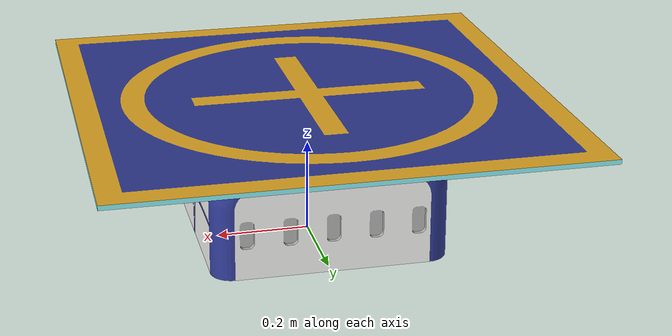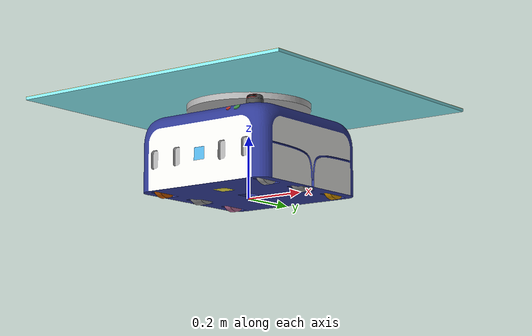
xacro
<?xml version="1.0"?>
<robot name="my_robot" xmlns:xacro="http://www.ros.org/wiki/xacro">

  <!--=========================== PLUGINS ===========================-->

  <xacro:include filename="$(find robot_description)/urdf/robot.gazebo.xacro" />

  <!--=========================== ROBOT PARTS ===========================-->

  <xacro:include filename="$(find robot_description)/urdf/robot_parts/carcaca.xacro" />

  <xacro:include filename="$(find robot_description)/urdf/robot_parts/traction_wheel.xacro" />

  <xacro:include filename="$(find robot_description)/urdf/robot_parts/tray.xacro" />

  <xacro:include filename="$(find robot_description)/urdf/robot_parts/piston.xacro" />

  <xacro:include filename="$(find robot_description)/urdf/robot_parts/omni_wheel.xacro" />

  <!--=========================== SENSORS ===========================-->

  <xacro:arg name="sensor_imu" default="true" />

  <xacro:arg name="sensor_lidar" default="true" />

  <xacro:arg name="sensor_rplidar" default="true" />

  <xacro:arg name="sensor_camera" default="true" />

  <xacro:if value="$(arg sensor_imu)">
    <xacro:include filename="$(find robot_description)/urdf/sensors/imu.xacro" />
  </xacro:if>

  <xacro:if value="$(arg sensor_lidar)">
    <xacro:include filename="$(find robot_description)/urdf/sensors/lidar.xacro" />
  </xacro:if>

  <xacro:if value="$(arg sensor_rplidar)">
    <xacro:include filename="$(find robot_description)/urdf/sensors/rplidar.xacro" />
  </xacro:if>

  <xacro:if value="$(arg sensor_camera)">
    <xacro:include filename="$(find robot_description)/urdf/sensors/camera.xacro" />
  </xacro:if>

</robot>

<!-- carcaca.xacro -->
<robot xmlns:xacro="http://www.ros.org/wiki/xacro">

    <xacro:macro name="base" params="base_link">
        <gazebo reference="${base_link}">
            <selfCollide>true</selfCollide>
            <mu1 value="0.3" />
            <mu2 value="0.3" />
            <kp value="1000000.0" />
            <kd value="100" />
            <fdir1 value="0 0 0" />
        </gazebo>

        <link name="${base_link}">
            <inertial>
                <mass value="2.4" />
                <origin rpy="0  0  3.14" xyz="0  0  0.0118" />
                <inertia ixx="0.019995" ixy="0.0" ixz="0.0"
                iyy="0.019995" iyz="0.0"
                izz="0.03675" />
            </inertial>
            <collision name="${base_link}_collision">
                <origin rpy="0  0  3.14" xyz="0  0  0.0118" />
                <geometry>
                    <mesh filename="package://robot_description/models/laser_robot/meshes/carcaca.dae" scale="1 1 1" />
                </geometry>
            </collision>
            <visual name="${base_link}_visual">
                <origin rpy="0  0  3.14" xyz="0  0  0.0118" />
                <geometry>
                    <mesh filename="package://robot_description/models/laser_robot/meshes/carcaca.dae" scale="1 1 1" />
                </geometry>
            </visual>
        </link>
    </xacro:macro>

    <xacro:base base_link="carcaca" />

</robot>

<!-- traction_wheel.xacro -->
<robot xmlns:xacro="http://www.ros.org/wiki/xacro">

    <xacro:macro name="traction_wheel" params="prefix pos_X pos_Y pos_Z pos_r pos_p pos_y">
        <joint name="joint_${prefix}" type="revolute">
            <parent link="carcaca" />
            <child link="${prefix}" />
            <origin rpy="${pos_r} ${pos_p} ${pos_y}" xyz="${pos_X} ${pos_Y} ${pos_Z}" />
            <axis xyz="0 0 1" />
            <limit effort="-1.0" lower="-1e+16" upper="1e+16" velocity="-1.0" />
        </joint>

        <gazebo reference="${prefix}">
            <selfCollide>false</selfCollide>
            <mu1>1.0</mu1>
            <mu2>1.0</mu2>
            <kp>1000000.0</kp>
            <kd>100.0</kd>
            <minDepth>0.001</minDepth>
            <maxVel>1.0</maxVel>
            <fdir1 value="0 0 0" />
        </gazebo>

        <link name="${prefix}">
            <inertial>
                <mass value="1" />
                <origin rpy="0 0 0" xyz="0 0 0" />
                <inertia ixx="0.001" ixy="0.0" ixz="0.0"
                iyy="0.001" iyz="0.0"
                izz="0.001" />
            </inertial>
            <collision name="${prefix}_collision">
                <origin rpy="0 0 0" xyz="0 0 0" />
                <geometry>
                    <mesh filename="package://robot_description/models/laser_robot/wheel/meshes/roda.obj" scale="1 1 1" />
                </geometry>
            </collision>
            <visual name="${prefix}_visual">
                <origin rpy="0 0 0" xyz="0 0 0" />
                <geometry>
                    <mesh filename="package://robot_description/models/laser_robot/wheel/meshes/roda.obj" scale="1 1 1" />
                </geometry>
            </visual>
        </link>
    </xacro:macro>

    <xacro:traction_wheel prefix="left_wheel" pos_X="-0.214" pos_Y="0" pos_Z="0.0507" pos_r="0" pos_p="1.57" pos_y="0" />
    <xacro:traction_wheel prefix="right_wheel" pos_X="0.193" pos_Y="0" pos_Z="0.0507" pos_r="0" pos_p="1.57" pos_y="0" />
</robot>

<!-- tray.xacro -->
<robot xmlns:xacro="http://www.ros.org/wiki/xacro">

    <xacro:macro name="tray" params="prefix">
        <joint name="joint_${prefix}" type="continuous">
            <parent link="piston" />
            <child link="${prefix}" />
            <origin rpy="0 0 0" xyz="0 0 0" />
            <axis xyz="0 0 1" />
        </joint>

        <gazebo reference="${prefix}">
            <selfCollide>true</selfCollide>
            <mu1 value="0.1" />
            <mu2 value="0.1" />
            <kp value="10000000.0" />
            <kd value="10000" />
            <fdir1 value="0 0 0" />
        </gazebo>

        <link name="${prefix}">
            <inertial>
                <mass value="0.5" />
                <origin rpy="0 0 0" xyz="0 0 0" />
                <inertia ixx="0" ixy="0.0" ixz="0.0" iyy="0" iyz="0.0" izz="0" />
            </inertial>
            <collision name="${prefix}_collision">
                <origin rpy="0 0 0" xyz="0 0 0" />
                <geometry>
                    <mesh filename="package://robot_description/models/laser_robot/meshes/tray.dae" scale="1 1 1" />
                </geometry>
            </collision>
            <visual name="${prefix}_visual">
                <origin rpy="0 0 0" xyz="0 0 0" />
                <geometry>
                    <mesh filename="package://robot_description/models/laser_robot/meshes/tray.dae" scale="1 1 1" />
                </geometry>
            </visual>
        </link>
    </xacro:macro>

    <xacro:tray prefix="tray" />

</robot>

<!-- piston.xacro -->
<robot xmlns:xacro="http://www.ros.org/wiki/xacro">

    <xacro:macro name="piston" params="prefix">
        <joint name="joint_${prefix}" type="prismatic">
            <parent link="carcaca" />
            <child link="${prefix}" />
            <origin rpy="0 0 0" xyz="0 0 0.1318" />
            <axis xyz="0 0 1" />
            <limit effort="0" lower="0" upper="0.04" velocity="0" />
        </joint>

        <gazebo reference="${prefix}">
            <selfCollide>true</selfCollide>
            <mu1 value="0.1" />
            <mu2 value="0.1" />
            <kp value="10000000.0" />
            <kd value="10000" />
            <fdir1 value="0 0 0" />
        </gazebo>

        <link name="${prefix}">
            <inertial>
                <mass value="0.3" />
                <origin rpy="0  0  0" xyz="0 0 0" />
                <inertia ixx="0" ixy="0" ixz="0" iyy="0" iyz="0" izz="0" />
            </inertial>
            <collision name="${prefix}_collision">
                <origin rpy="0  0  0" xyz="0 0 0" />
                <geometry>
                    <mesh filename="package://robot_description/models/laser_robot/meshes/piston.dae" scale="1 1 1" />
                </geometry>
            </collision>
            <visual name="${prefix}_visual">
                <origin rpy="0  0  0" xyz="0 0 0" />
                <geometry>
                    <mesh filename="package://robot_description/models/laser_robot/meshes/piston.dae" scale="1 1 1" />
                </geometry>
            </visual>
        </link>
    </xacro:macro>

    <xacro:piston prefix="piston" />

</robot>

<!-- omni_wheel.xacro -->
<robot xmlns:xacro="http://www.ros.org/wiki/xacro">

    <xacro:macro name="omni_wheel" params="prefix pos_X pos_Y pos_Z pos_r pos_p pos_y">
        <joint name="joint_${prefix}_wheel" type="fixed">
            <parent link="carcaca" />
            <child link="${prefix}_wheel" />
            <origin rpy="${pos_r} ${pos_p} ${pos_y}" xyz="${pos_X} ${pos_Y} ${pos_Z}" />
        </joint>

        <gazebo reference="${prefix}_wheel">
            <selfCollide>true</selfCollide>
            <mu1 value="0.09" />
            <mu2 value="0.09" />
            <kp value="10000000.0" />
            <kd value="10000" />
            <fdir1 value="0 0 0" />
        </gazebo>

        <link name="${prefix}_wheel">
            <inertial>
                <mass value="0.01" />
                <origin rpy="0 0 0" xyz="0 0 0" />
                <inertia ixx="1" ixy="0.0" ixz="0.0" iyy="1" iyz="0.0" izz="1" />
            </inertial>
            <collision name="${prefix}_wheel_collision">
                <origin rpy="0 0 0" xyz="0 0 0" />
                <geometry>
                    <mesh filename="package://robot_description/models/laser_robot/omni_wheel/meshes/roda_omni.obj" scale="1 1 1" />
                </geometry>
            </collision>
            <visual name="${prefix}_wheel_visual">
                <origin rpy="0 0 0" xyz="0 0 0" />
                <geometry>
                    <mesh filename="package://robot_description/models/laser_robot/omni_wheel/meshes/roda_omni.obj" scale="1 1 1" />
                </geometry>
            </visual>
        </link>
    </xacro:macro>

    <xacro:omni_wheel prefix="left_front" pos_X="-0.214" pos_Y="-0.176" pos_Z="0.0508" pos_r="0" pos_p="1.57" pos_y="0" />
    <xacro:omni_wheel prefix="left_rear" pos_X="-0.214" pos_Y="0.176" pos_Z="0.0508" pos_r="0" pos_p="1.57" pos_y="0" />
    <xacro:omni_wheel prefix="right_front" pos_X="0.193" pos_Y="-0.176" pos_Z="0.0508" pos_r="0" pos_p="1.57" pos_y="0" />
    <xacro:omni_wheel prefix="right_rear" pos_X="0.193" pos_Y="0.176" pos_Z="0.0508" pos_r="0" pos_p="1.57" pos_y="0" />

</robot>

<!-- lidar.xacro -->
<robot xmlns:xacro="http://www.ros.org/wiki/xacro">

  <gazebo reference="lidar">
    <sensor type="ray" name="laser_sensor">
      <pose>0 0 0 0 0 0</pose>
      <visualize>false</visualize>
      <update_rate>20</update_rate>
      <ray>
        <scan>
          <horizontal>
            <samples>${14400/20}</samples>
            <resolution>1</resolution>
            <min_angle>-1.1781</min_angle>
            <max_angle>1.1781</max_angle>
          </horizontal>
        </scan>
        <range>
          <min>0.15</min>
          <max>14.0</max>
          <resolution>0.01</resolution>
        </range>
        <noise>
          <type>gaussian</type>
          <mean>0.0</mean>
          <stddev>0.01</stddev>
        </noise>
      </ray>
      <plugin name="gazebo_ros_head_hokuyo_controller" filename="libgazebo_ros_laser.so">
        <topicName>/my_robot/laser/scan</topicName>
        <frameName>lidar</frameName>
      </plugin>
    </sensor>
  </gazebo>

  <joint name="joint_lidar" type="fixed">
    <parent link="carcaca" />
    <child link="lidar" />
    <origin rpy="0 0 -1.57" xyz="-0.0005 -0.23 0.109" />
  </joint>

  <link name="lidar">
    <inertial>
      <mass value="0.1" />
      <origin rpy="0 0 0" xyz="0 0 0" />
      <inertia ixx="1" ixy="0" ixz="0" iyy="1" iyz="0" izz="1" />
    </inertial>
    <collision name="lidar_collision">
      <origin rpy="0 0 0" xyz="0 0 0" />
      <geometry>
        <mesh filename="package://robot_description/models/laser_robot/lidar/meshes/lidar.obj" scale="0.5 0.5 0.5" />
      </geometry>
    </collision>
    <visual name="lidar_visual">
      <origin rpy="0 1.57 1.57" xyz="0 0 0" />
      <geometry>
        <mesh filename="package://robot_description/models/laser_robot/lidar/meshes/lidar.obj" scale="0.5 0.5 0.5" />
      </geometry>
    </visual>
  </link>
</robot>

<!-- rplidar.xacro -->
<robot xmlns:xacro="http://www.ros.org/wiki/xacro">

  <gazebo reference="rplidar">
    <sensor type="ray" name="laser_sensor">
      <pose>0 0 0 0 0 0</pose>
      <visualize>false</visualize>
      <update_rate>20</update_rate>
      <ray>
        <scan>
          <horizontal>
            <samples>${14400/20}</samples>
            <resolution>1</resolution>
            <min_angle>-3.14159265359</min_angle>
            <max_angle>3.14159265359</max_angle>
          </horizontal>
        </scan>
        <range>
          <min>0.15</min>
          <max>14.0</max>
          <resolution>0.01</resolution>
        </range>
        <noise>
          <type>gaussian</type>
          <mean>0.0</mean>
          <stddev>0.01</stddev>
        </noise>
      </ray>
      <plugin name="gazebo_ros_head_hokuyo_controller" filename="libgazebo_ros_laser.so">
        <topicName>/my_robot/rplidar/laser/scan</topicName>
        <frameName>rplidar</frameName>
      </plugin>
    </sensor>
  </gazebo>

  <joint name="joint_rplidar" type="fixed">
    <parent link="carcaca" />
    <child link="rplidar" />
    <origin rpy="0 0 0" xyz="0.14 -0.17 0.27" />
  </joint>

  <link name="rplidar">
    <inertial>
      <mass value="0.1" />
      <origin rpy="0 0 0" xyz="0 0 0" />
      <inertia ixx="1" ixy="0" ixz="0" iyy="1" iyz="0" izz="1" />
    </inertial>
    <collision name="rplidar_collision">
      <origin rpy="0 0 1.20" xyz="-0.03 0.02 -0.02" />
      <geometry>
        <mesh filename="package://robot_description/models/laser_robot/meshes/rplidar.dae" scale="0.7 0.7 0.7" />
      </geometry>
    </collision>
    <visual name="rplidar_visual">
      <origin rpy="0 0 1.20" xyz="-0.03 0.02 -0.02" />
      <geometry>
        <mesh filename="package://robot_description/models/laser_robot/meshes/rplidar.dae" scale="0.7 0.7 0.7" />
      </geometry>
    </visual>
  </link>

</robot>

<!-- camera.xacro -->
<robot xmlns:xacro="http://www.ros.org/wiki/xacro">

    <xacro:arg name="camera_1_visual" default="false" />
    <gazebo reference="camera_1">
        <sensor type="camera" name="camera1">
            <update_rate>30.0</update_rate>
            <visualize>$(arg camera_1_visual)</visualize>
            <camera name="head">
                <horizontal_fov>1.3962634</horizontal_fov>
                <image>
                    <width>800</width>
                    <height>800</height>
                    <format>R8G8B8</format>
                </image>
                <clip>
                    <near>0.02</near>
                    <far>300</far>
                </clip>
                <noise>
                    <type>gaussian</type>

                    <mean>0.0</mean>
                    <stddev>0.007</stddev>
                </noise>
            </camera>
            <plugin name="camera_controller" filename="libgazebo_ros_camera.so">
                <alwaysOn>true</alwaysOn>
                <updateRate>0.0</updateRate>
                <cameraName>my_robot/camera1</cameraName>
                <imageTopicName>image_raw</imageTopicName>
                <cameraInfoTopicName>camera_info</cameraInfoTopicName>
                <frameName>camera_1</frameName>
                <hackBaseline>0.07</hackBaseline>
                <distortionK1>0.0</distortionK1>
                <distortionK2>0.0</distortionK2>
                <distortionK3>0.0</distortionK3>
                <distortionT1>0.0</distortionT1>
                <distortionT2>0.0</distortionT2>
            </plugin>
        </sensor>
    </gazebo>

    <joint name="joint_camera_1" type="fixed">
        <parent link="carcaca" />
        <child link="camera_1" />
        <origin rpy="0 1.57 0" xyz="0 -0.127 0.0367" />
    </joint>

    <link name="camera_1">
        <inertial>
            <mass value="0.1" />
            <origin rpy="0 0 0" xyz="0 0 0" />
            <inertia ixx="1" ixy="0" ixz="0" iyy="1" iyz="0" izz="1" />
        </inertial>
        <collision name="camera_1_collision">
            <origin rpy="0 0 0" xyz="0 0 0" />
            <geometry>
                <mesh filename="package://robot_description/models/laser_robot/camera/meshes/camera.obj" scale="0.5 0.5 0.5" />
            </geometry>
        </collision>
        <visual name="camera_1_visual">
            <origin rpy="0 0 1.57" xyz="0 0 0" />
            <geometry>
                <mesh filename="package://robot_description/models/laser_robot/camera/meshes/camera.obj" scale="0.5 0.5 0.5" />
            </geometry>
        </visual>
    </link>

</robot>
